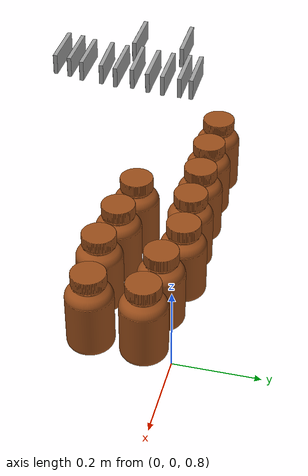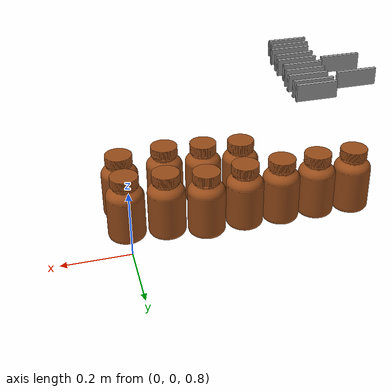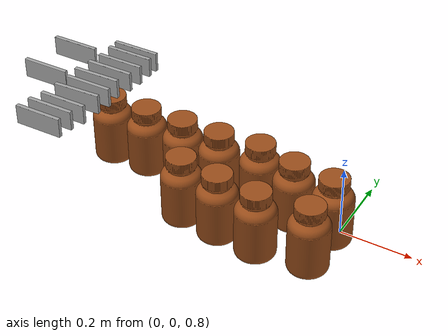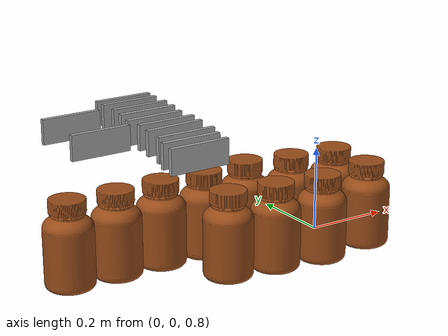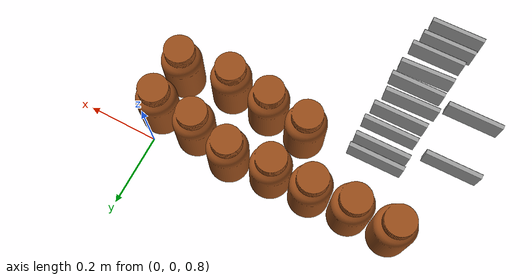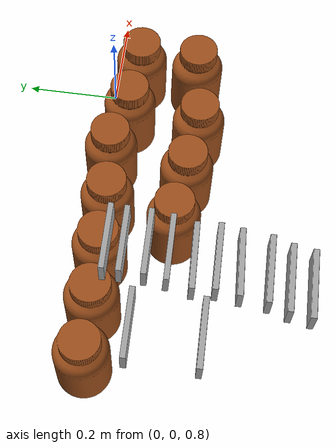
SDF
<sdf version="1.7">
 <world name="default">
  <model name="med_1_0_clone_2">
   <link name="link_0">
    <inertial>
     <mass>1</mass>
     <inertia>
      <ixx>0.166667</ixx>
      <ixy>0</ixy>
      <ixz>0</ixz>
      <iyy>0.166667</iyy>
      <iyz>0</iyz>
      <izz>0.166667</izz>
     </inertia>
    </inertial>
    <pose>0 -0.005 -0.025 0 -0 0</pose>
    <visual name="visual">
     <pose>0 0.005 0.025 0 -0 0</pose>
     <geometry><mesh><uri>model://med_1/meshes/med-1.dae</uri><scale>0.01 0.01 0.01</scale></mesh></geometry>
     <material>
      <shader type="pixel"><normal_map>__default__</normal_map></shader>
      <emissive>0 0 0 1</emissive>
     </material>
    </visual>
    <collision name="collision">
     <pose>0 0.005 0.025 0 -0 0</pose>
     <geometry><mesh><uri>model://med_1/meshes/med-1.dae</uri><scale>0.01 0.01 0.01</scale></mesh></geometry>
     <surface>
      <friction>
       <ode><mu>1</mu><mu2>1</mu2><fdir1>0 0 0</fdir1><slip1>0</slip1><slip2>0</slip2></ode>
       <torsional>
        <coefficient>1</coefficient>
        <patch_radius>0</patch_radius>
        <surface_radius>0</surface_radius>
        <use_patch_radius>1</use_patch_radius>
        <ode><slip>0</slip></ode>
       </torsional>
      </friction>
      <bounce><restitution_coefficient>0</restitution_coefficient><threshold>1e+06</threshold></bounce>
      <contact>
       <collide_without_contact>0</collide_without_contact>
       <collide_without_contact_bitmask>1</collide_without_contact_bitmask>
       <collide_bitmask>1</collide_bitmask>
       <ode>
        <soft_cfm>0</soft_cfm>
        <soft_erp>0.2</soft_erp>
        <kp>1e+13</kp>
        <kd>1</kd>
        <max_vel>0.01</max_vel>
        <min_depth>0</min_depth>
       </ode>
       <bullet>
        <split_impulse>1</split_impulse>
        <split_impulse_penetration_threshold>-0.01</split_impulse_penetration_threshold>
        <soft_cfm>0</soft_cfm>
        <soft_erp>0.2</soft_erp>
        <kp>1e+13</kp>
        <kd>1</kd>
       </bullet>
      </contact>
     </surface>
    </collision>
   </link>
   <static>0</static>
   <pose>-0.555283 -0.151315 1.20018 -2e-05 1e-06 -3.1318</pose>
  </model>
  <model name="med_1_0_clone_4">
   <link name="link_0">
    <inertial>
     <mass>1</mass>
     <inertia>
      <ixx>0.166667</ixx>
      <ixy>0</ixy>
      <ixz>0</ixz>
      <iyy>0.166667</iyy>
      <iyz>0</iyz>
      <izz>0.166667</izz>
     </inertia>
    </inertial>
    <pose>0 -0.005 -0.025 0 -0 0</pose>
    <visual name="visual">
     <pose>0 0.005 0.025 0 -0 0</pose>
     <geometry><mesh><uri>model://med_1/meshes/med-1.dae</uri><scale>0.01 0.01 0.01</scale></mesh></geometry>
     <material>
      <shader type="pixel"><normal_map>__default__</normal_map></shader>
      <emissive>0 0 0 1</emissive>
     </material>
    </visual>
    <collision name="collision">
     <pose>0 0.005 0.025 0 -0 0</pose>
     <geometry><mesh><uri>model://med_1/meshes/med-1.dae</uri><scale>0.01 0.01 0.01</scale></mesh></geometry>
     <surface>
      <friction>
       <ode><mu>1</mu><mu2>1</mu2><fdir1>0 0 0</fdir1><slip1>0</slip1><slip2>0</slip2></ode>
       <torsional>
        <coefficient>1</coefficient>
        <patch_radius>0</patch_radius>
        <surface_radius>0</surface_radius>
        <use_patch_radius>1</use_patch_radius>
        <ode><slip>0</slip></ode>
       </torsional>
      </friction>
      <bounce><restitution_coefficient>0</restitution_coefficient><threshold>1e+06</threshold></bounce>
      <contact>
       <collide_without_contact>0</collide_without_contact>
       <collide_without_contact_bitmask>1</collide_without_contact_bitmask>
       <collide_bitmask>1</collide_bitmask>
       <ode>
        <soft_cfm>0</soft_cfm>
        <soft_erp>0.2</soft_erp>
        <kp>1e+13</kp>
        <kd>1</kd>
        <max_vel>0.01</max_vel>
        <min_depth>0</min_depth>
       </ode>
       <bullet>
        <split_impulse>1</split_impulse>
        <split_impulse_penetration_threshold>-0.01</split_impulse_penetration_threshold>
        <soft_cfm>0</soft_cfm>
        <soft_erp>0.2</soft_erp>
        <kp>1e+13</kp>
        <kd>1</kd>
       </bullet>
      </contact>
     </surface>
    </collision>
   </link>
   <static>0</static>
   <pose>-0.569504 -0.230232 1.20021 -0.011212 0.000559 -3.11158</pose>
  </model>
  <model name="med_1_0_clone_6">
   <link name="link_0">
    <inertial>
     <mass>1</mass>
     <inertia>
      <ixx>0.166667</ixx>
      <ixy>0</ixy>
      <ixz>0</ixz>
      <iyy>0.166667</iyy>
      <iyz>0</iyz>
      <izz>0.166667</izz>
     </inertia>
    </inertial>
    <pose>0 -0.005 -0.025 0 -0 0</pose>
    <visual name="visual">
     <pose>0 0.005 0.025 0 -0 0</pose>
     <geometry><mesh><uri>model://med_1/meshes/med-1.dae</uri><scale>0.01 0.01 0.01</scale></mesh></geometry>
     <material>
      <shader type="pixel"><normal_map>__default__</normal_map></shader>
      <emissive>0 0 0 1</emissive>
     </material>
    </visual>
    <collision name="collision">
     <pose>0 0.005 0.025 0 -0 0</pose>
     <geometry><mesh><uri>model://med_1/meshes/med-1.dae</uri><scale>0.01 0.01 0.01</scale></mesh></geometry>
     <surface>
      <friction>
       <ode><mu>1</mu><mu2>1</mu2><fdir1>0 0 0</fdir1><slip1>0</slip1><slip2>0</slip2></ode>
       <torsional>
        <coefficient>1</coefficient>
        <patch_radius>0</patch_radius>
        <surface_radius>0</surface_radius>
        <use_patch_radius>1</use_patch_radius>
        <ode><slip>0</slip></ode>
       </torsional>
      </friction>
      <bounce><restitution_coefficient>0</restitution_coefficient><threshold>1e+06</threshold></bounce>
      <contact>
       <collide_without_contact>0</collide_without_contact>
       <collide_without_contact_bitmask>1</collide_without_contact_bitmask>
       <collide_bitmask>1</collide_bitmask>
       <ode>
        <soft_cfm>0</soft_cfm>
        <soft_erp>0.2</soft_erp>
        <kp>1e+13</kp>
        <kd>1</kd>
        <max_vel>0.01</max_vel>
        <min_depth>0</min_depth>
       </ode>
       <bullet>
        <split_impulse>1</split_impulse>
        <split_impulse_penetration_threshold>-0.01</split_impulse_penetration_threshold>
        <soft_cfm>0</soft_cfm>
        <soft_erp>0.2</soft_erp>
        <kp>1e+13</kp>
        <kd>1</kd>
       </bullet>
      </contact>
     </surface>
    </collision>
   </link>
   <static>0</static>
   <pose>-0.566184 -0.269641 1.20018 -1.8e-05 -1e-06 -3.13179</pose>
  </model>
  <model name="med_1_0_clone_7">
   <link name="link_0">
    <inertial>
     <mass>1</mass>
     <inertia>
      <ixx>0.166667</ixx>
      <ixy>0</ixy>
      <ixz>0</ixz>
      <iyy>0.166667</iyy>
      <iyz>0</iyz>
      <izz>0.166667</izz>
     </inertia>
    </inertial>
    <pose>0 -0.005 -0.025 0 -0 0</pose>
    <visual name="visual">
     <pose>0 0.005 0.025 0 -0 0</pose>
     <geometry><mesh><uri>model://med_1/meshes/med-1.dae</uri><scale>0.01 0.01 0.01</scale></mesh></geometry>
     <material>
      <shader type="pixel"><normal_map>__default__</normal_map></shader>
      <emissive>0 0 0 1</emissive>
     </material>
    </visual>
    <collision name="collision">
     <pose>0 0.005 0.025 0 -0 0</pose>
     <geometry><mesh><uri>model://med_1/meshes/med-1.dae</uri><scale>0.01 0.01 0.01</scale></mesh></geometry>
     <surface>
      <friction>
       <ode><mu>1</mu><mu2>1</mu2><fdir1>0 0 0</fdir1><slip1>0</slip1><slip2>0</slip2></ode>
       <torsional>
        <coefficient>1</coefficient>
        <patch_radius>0</patch_radius>
        <surface_radius>0</surface_radius>
        <use_patch_radius>1</use_patch_radius>
        <ode><slip>0</slip></ode>
       </torsional>
      </friction>
      <bounce><restitution_coefficient>0</restitution_coefficient><threshold>1e+06</threshold></bounce>
      <contact>
       <collide_without_contact>0</collide_without_contact>
       <collide_without_contact_bitmask>1</collide_without_contact_bitmask>
       <collide_bitmask>1</collide_bitmask>
       <ode>
        <soft_cfm>0</soft_cfm>
        <soft_erp>0.2</soft_erp>
        <kp>1e+13</kp>
        <kd>1</kd>
        <max_vel>0.01</max_vel>
        <min_depth>0</min_depth>
       </ode>
       <bullet>
        <split_impulse>1</split_impulse>
        <split_impulse_penetration_threshold>-0.01</split_impulse_penetration_threshold>
        <soft_cfm>0</soft_cfm>
        <soft_erp>0.2</soft_erp>
        <kp>1e+13</kp>
        <kd>1</kd>
       </bullet>
      </contact>
     </surface>
    </collision>
   </link>
   <static>0</static>
   <pose>-0.700002 -0.258197 1.20018 -1.6e-05 1e-06 -3.13179</pose>
  </model>
  <model name="med_1_0_clone_9">
   <link name="link_0">
    <inertial>
     <mass>1</mass>
     <inertia>
      <ixx>0.166667</ixx>
      <ixy>0</ixy>
      <ixz>0</ixz>
      <iyy>0.166667</iyy>
      <iyz>0</iyz>
      <izz>0.166667</izz>
     </inertia>
    </inertial>
    <pose>0 -0.005 -0.025 0 -0 0</pose>
    <visual name="visual">
     <pose>0 0.005 0.025 0 -0 0</pose>
     <geometry><mesh><uri>model://med_1/meshes/med-1.dae</uri><scale>0.01 0.01 0.01</scale></mesh></geometry>
     <material>
      <shader type="pixel"><normal_map>__default__</normal_map></shader>
      <emissive>0 0 0 1</emissive>
     </material>
    </visual>
    <collision name="collision">
     <pose>0 0.005 0.025 0 -0 0</pose>
     <geometry><mesh><uri>model://med_1/meshes/med-1.dae</uri><scale>0.01 0.01 0.01</scale></mesh></geometry>
     <surface>
      <friction>
       <ode><mu>1</mu><mu2>1</mu2><fdir1>0 0 0</fdir1><slip1>0</slip1><slip2>0</slip2></ode>
       <torsional>
        <coefficient>1</coefficient>
        <patch_radius>0</patch_radius>
        <surface_radius>0</surface_radius>
        <use_patch_radius>1</use_patch_radius>
        <ode><slip>0</slip></ode>
       </torsional>
      </friction>
      <bounce><restitution_coefficient>0</restitution_coefficient><threshold>1e+06</threshold></bounce>
      <contact>
       <collide_without_contact>0</collide_without_contact>
       <collide_without_contact_bitmask>1</collide_without_contact_bitmask>
       <collide_bitmask>1</collide_bitmask>
       <ode>
        <soft_cfm>0</soft_cfm>
        <soft_erp>0.2</soft_erp>
        <kp>1e+13</kp>
        <kd>1</kd>
        <max_vel>0.01</max_vel>
        <min_depth>0</min_depth>
       </ode>
       <bullet>
        <split_impulse>1</split_impulse>
        <split_impulse_penetration_threshold>-0.01</split_impulse_penetration_threshold>
        <soft_cfm>0</soft_cfm>
        <soft_erp>0.2</soft_erp>
        <kp>1e+13</kp>
        <kd>1</kd>
       </bullet>
      </contact>
     </surface>
    </collision>
   </link>
   <static>0</static>
   <pose>-0.55508 -0.110079 1.20019 -2e-05 0 -3.1318</pose>
  </model>
  <model name="med_1_0_clone_18">
   <link name="link_0">
    <inertial>
     <mass>1</mass>
     <inertia>
      <ixx>0.166667</ixx>
      <ixy>0</ixy>
      <ixz>0</ixz>
      <iyy>0.166667</iyy>
      <iyz>0</iyz>
      <izz>0.166667</izz>
     </inertia>
    </inertial>
    <pose>0 -0.005 -0.025 0 -0 0</pose>
    <visual name="visual">
     <pose>0 0.005 0.025 0 -0 0</pose>
     <geometry><mesh><uri>model://med_1/meshes/med-1.dae</uri><scale>0.01 0.01 0.01</scale></mesh></geometry>
     <material>
      <shader type="pixel"><normal_map>__default__</normal_map></shader>
      <emissive>0 0 0 1</emissive>
     </material>
    </visual>
    <collision name="collision">
     <pose>0 0.005 0.025 0 -0 0</pose>
     <geometry><mesh><uri>model://med_1/meshes/med-1.dae</uri><scale>0.01 0.01 0.01</scale></mesh></geometry>
     <surface>
      <friction>
       <ode><mu>1</mu><mu2>1</mu2><fdir1>0 0 0</fdir1><slip1>0</slip1><slip2>0</slip2></ode>
       <torsional>
        <coefficient>1</coefficient>
        <patch_radius>0</patch_radius>
        <surface_radius>0</surface_radius>
        <use_patch_radius>1</use_patch_radius>
        <ode><slip>0</slip></ode>
       </torsional>
      </friction>
      <bounce><restitution_coefficient>0</restitution_coefficient><threshold>1e+06</threshold></bounce>
      <contact>
       <collide_without_contact>0</collide_without_contact>
       <collide_without_contact_bitmask>1</collide_without_contact_bitmask>
       <collide_bitmask>1</collide_bitmask>
       <ode>
        <soft_cfm>0</soft_cfm>
        <soft_erp>0.2</soft_erp>
        <kp>1e+13</kp>
        <kd>1</kd>
        <max_vel>0.01</max_vel>
        <min_depth>0</min_depth>
       </ode>
       <bullet>
        <split_impulse>1</split_impulse>
        <split_impulse_penetration_threshold>-0.01</split_impulse_penetration_threshold>
        <soft_cfm>0</soft_cfm>
        <soft_erp>0.2</soft_erp>
        <kp>1e+13</kp>
        <kd>1</kd>
       </bullet>
      </contact>
     </surface>
    </collision>
   </link>
   <static>0</static>
   <pose>-0.698931 -0.13829 1.20019 -2e-06 -2e-06 -3.13179</pose>
  </model>
  <model name="med_1_0_clone_22">
   <link name="link_0">
    <inertial>
     <mass>1</mass>
     <inertia>
      <ixx>0.166667</ixx>
      <ixy>0</ixy>
      <ixz>0</ixz>
      <iyy>0.166667</iyy>
      <iyz>0</iyz>
      <izz>0.166667</izz>
     </inertia>
    </inertial>
    <pose>0 -0.005 -0.025 0 -0 0</pose>
    <visual name="visual">
     <pose>0 0.005 0.025 0 -0 0</pose>
     <geometry><mesh><uri>model://med_1/meshes/med-1.dae</uri><scale>0.01 0.01 0.01</scale></mesh></geometry>
     <material>
      <shader type="pixel"><normal_map>__default__</normal_map></shader>
      <emissive>0 0 0 1</emissive>
     </material>
    </visual>
    <collision name="collision">
     <pose>0 0.005 0.025 0 -0 0</pose>
     <geometry><mesh><uri>model://med_1/meshes/med-1.dae</uri><scale>0.01 0.01 0.01</scale></mesh></geometry>
     <surface>
      <friction>
       <ode><mu>1</mu><mu2>1</mu2><fdir1>0 0 0</fdir1><slip1>0</slip1><slip2>0</slip2></ode>
       <torsional>
        <coefficient>1</coefficient>
        <patch_radius>0</patch_radius>
        <surface_radius>0</surface_radius>
        <use_patch_radius>1</use_patch_radius>
        <ode><slip>0</slip></ode>
       </torsional>
      </friction>
      <bounce><restitution_coefficient>0</restitution_coefficient><threshold>1e+06</threshold></bounce>
      <contact>
       <collide_without_contact>0</collide_without_contact>
       <collide_without_contact_bitmask>1</collide_without_contact_bitmask>
       <collide_bitmask>1</collide_bitmask>
       <ode>
        <soft_cfm>0</soft_cfm>
        <soft_erp>0.2</soft_erp>
        <kp>1e+13</kp>
        <kd>1</kd>
        <max_vel>0.01</max_vel>
        <min_depth>0</min_depth>
       </ode>
       <bullet>
        <split_impulse>1</split_impulse>
        <split_impulse_penetration_threshold>-0.01</split_impulse_penetration_threshold>
        <soft_cfm>0</soft_cfm>
        <soft_erp>0.2</soft_erp>
        <kp>1e+13</kp>
        <kd>1</kd>
       </bullet>
      </contact>
     </surface>
    </collision>
   </link>
   <static>0</static>
   <pose>-0.576732 -0.356509 1.20027 0.003392 0.000779 -3.13373</pose>
  </model>
  <model name="med_1_0_clone_25">
   <link name="link_0">
    <inertial>
     <mass>1</mass>
     <inertia>
      <ixx>0.166667</ixx>
      <ixy>0</ixy>
      <ixz>0</ixz>
      <iyy>0.166667</iyy>
      <iyz>0</iyz>
      <izz>0.166667</izz>
     </inertia>
    </inertial>
    <pose>0 -0.005 -0.025 0 -0 0</pose>
    <visual name="visual">
     <pose>0 0.005 0.025 0 -0 0</pose>
     <geometry><mesh><uri>model://med_1/meshes/med-1.dae</uri><scale>0.01 0.01 0.01</scale></mesh></geometry>
     <material>
      <shader type="pixel"><normal_map>__default__</normal_map></shader>
      <emissive>0 0 0 1</emissive>
     </material>
    </visual>
    <collision name="collision">
     <pose>0 0.005 0.025 0 -0 0</pose>
     <geometry><mesh><uri>model://med_1/meshes/med-1.dae</uri><scale>0.01 0.01 0.01</scale></mesh></geometry>
     <surface>
      <friction>
       <ode><mu>1</mu><mu2>1</mu2><fdir1>0 0 0</fdir1><slip1>0</slip1><slip2>0</slip2></ode>
       <torsional>
        <coefficient>1</coefficient>
        <patch_radius>0</patch_radius>
        <surface_radius>0</surface_radius>
        <use_patch_radius>1</use_patch_radius>
        <ode><slip>0</slip></ode>
       </torsional>
      </friction>
      <bounce><restitution_coefficient>0</restitution_coefficient><threshold>1e+06</threshold></bounce>
      <contact>
       <collide_without_contact>0</collide_without_contact>
       <collide_without_contact_bitmask>1</collide_without_contact_bitmask>
       <collide_bitmask>1</collide_bitmask>
       <ode>
        <soft_cfm>0</soft_cfm>
        <soft_erp>0.2</soft_erp>
        <kp>1e+13</kp>
        <kd>1</kd>
        <max_vel>0.01</max_vel>
        <min_depth>0</min_depth>
       </ode>
       <bullet>
        <split_impulse>1</split_impulse>
        <split_impulse_penetration_threshold>-0.01</split_impulse_penetration_threshold>
        <soft_cfm>0</soft_cfm>
        <soft_erp>0.2</soft_erp>
        <kp>1e+13</kp>
        <kd>1</kd>
       </bullet>
      </contact>
     </surface>
    </collision>
   </link>
   <static>0</static>
   <pose>-0.593853 -0.427873 1.20019 -3e-06 5.1e-05 -3.13177</pose>
  </model>
  <model name="med_1_0_clone_26">
   <link name="link_0">
    <inertial>
     <mass>1</mass>
     <inertia>
      <ixx>0.166667</ixx>
      <ixy>0</ixy>
      <ixz>0</ixz>
      <iyy>0.166667</iyy>
      <iyz>0</iyz>
      <izz>0.166667</izz>
     </inertia>
    </inertial>
    <pose>0 -0.005 -0.025 0 -0 0</pose>
    <visual name="visual">
     <pose>0 0.005 0.025 0 -0 0</pose>
     <geometry><mesh><uri>model://med_1/meshes/med-1.dae</uri><scale>0.01 0.01 0.01</scale></mesh></geometry>
     <material>
      <shader type="pixel"><normal_map>__default__</normal_map></shader>
      <emissive>0 0 0 1</emissive>
     </material>
    </visual>
    <collision name="collision">
     <pose>0 0.005 0.025 0 -0 0</pose>
     <geometry><mesh><uri>model://med_1/meshes/med-1.dae</uri><scale>0.01 0.01 0.01</scale></mesh></geometry>
     <surface>
      <friction>
       <ode><mu>1</mu><mu2>1</mu2><fdir1>0 0 0</fdir1><slip1>0</slip1><slip2>0</slip2></ode>
       <torsional>
        <coefficient>1</coefficient>
        <patch_radius>0</patch_radius>
        <surface_radius>0</surface_radius>
        <use_patch_radius>1</use_patch_radius>
        <ode><slip>0</slip></ode>
       </torsional>
      </friction>
      <bounce><restitution_coefficient>0</restitution_coefficient><threshold>1e+06</threshold></bounce>
      <contact>
       <collide_without_contact>0</collide_without_contact>
       <collide_without_contact_bitmask>1</collide_without_contact_bitmask>
       <collide_bitmask>1</collide_bitmask>
       <ode>
        <soft_cfm>0</soft_cfm>
        <soft_erp>0.2</soft_erp>
        <kp>1e+13</kp>
        <kd>1</kd>
        <max_vel>0.01</max_vel>
        <min_depth>0</min_depth>
       </ode>
       <bullet>
        <split_impulse>1</split_impulse>
        <split_impulse_penetration_threshold>-0.01</split_impulse_penetration_threshold>
        <soft_cfm>0</soft_cfm>
        <soft_erp>0.2</soft_erp>
        <kp>1e+13</kp>
        <kd>1</kd>
       </bullet>
      </contact>
     </surface>
    </collision>
   </link>
   <static>0</static>
   <pose>-0.587979 -0.390916 1.20018 -9e-06 -0 -3.13179</pose>
  </model>
  <model name="med_1_0_clone_34">
   <link name="link_0">
    <inertial>
     <mass>1</mass>
     <inertia>
      <ixx>0.166667</ixx>
      <ixy>0</ixy>
      <ixz>0</ixz>
      <iyy>0.166667</iyy>
      <iyz>0</iyz>
      <izz>0.166667</izz>
     </inertia>
    </inertial>
    <pose>0 -0.005 -0.025 0 -0 0</pose>
    <visual name="visual">
     <pose>0 0.005 0.025 0 -0 0</pose>
     <geometry><mesh><uri>model://med_1/meshes/med-1.dae</uri><scale>0.01 0.01 0.01</scale></mesh></geometry>
     <material>
      <shader type="pixel"><normal_map>__default__</normal_map></shader>
      <emissive>0 0 0 1</emissive>
     </material>
    </visual>
    <collision name="collision">
     <pose>0 0.005 0.025 0 -0 0</pose>
     <geometry><mesh><uri>model://med_1/meshes/med-1.dae</uri><scale>0.01 0.01 0.01</scale></mesh></geometry>
     <surface>
      <friction>
       <ode><mu>1</mu><mu2>1</mu2><fdir1>0 0 0</fdir1><slip1>0</slip1><slip2>0</slip2></ode>
       <torsional>
        <coefficient>1</coefficient>
        <patch_radius>0</patch_radius>
        <surface_radius>0</surface_radius>
        <use_patch_radius>1</use_patch_radius>
        <ode><slip>0</slip></ode>
       </torsional>
      </friction>
      <bounce><restitution_coefficient>0</restitution_coefficient><threshold>1e+06</threshold></bounce>
      <contact>
       <collide_without_contact>0</collide_without_contact>
       <collide_without_contact_bitmask>1</collide_without_contact_bitmask>
       <collide_bitmask>1</collide_bitmask>
       <ode>
        <soft_cfm>0</soft_cfm>
        <soft_erp>0.2</soft_erp>
        <kp>1e+13</kp>
        <kd>1</kd>
        <max_vel>0.01</max_vel>
        <min_depth>0</min_depth>
       </ode>
       <bullet>
        <split_impulse>1</split_impulse>
        <split_impulse_penetration_threshold>-0.01</split_impulse_penetration_threshold>
        <soft_cfm>0</soft_cfm>
        <soft_erp>0.2</soft_erp>
        <kp>1e+13</kp>
        <kd>1</kd>
       </bullet>
      </contact>
     </surface>
    </collision>
   </link>
   <static>0</static>
   <pose>-0.571335 -0.307956 1.20047 0.002564 0.004172 -3.09717</pose>
  </model>
  <model name="med_1_0_clone_37">
   <link name="link_0">
    <inertial>
     <mass>1</mass>
     <inertia>
      <ixx>0.166667</ixx>
      <ixy>0</ixy>
      <ixz>0</ixz>
      <iyy>0.166667</iyy>
      <iyz>0</iyz>
      <izz>0.166667</izz>
     </inertia>
    </inertial>
    <pose>0 -0.005 -0.025 0 -0 0</pose>
    <visual name="visual">
     <pose>0 0.005 0.025 0 -0 0</pose>
     <geometry><mesh><uri>model://med_1/meshes/med-1.dae</uri><scale>0.01 0.01 0.01</scale></mesh></geometry>
     <material>
      <shader type="pixel"><normal_map>__default__</normal_map></shader>
      <emissive>0 0 0 1</emissive>
     </material>
    </visual>
    <collision name="collision">
     <pose>0 0.005 0.025 0 -0 0</pose>
     <geometry><mesh><uri>model://med_1/meshes/med-1.dae</uri><scale>0.01 0.01 0.01</scale></mesh></geometry>
     <surface>
      <friction>
       <ode><mu>1</mu><mu2>1</mu2><fdir1>0 0 0</fdir1><slip1>0</slip1><slip2>0</slip2></ode>
       <torsional>
        <coefficient>1</coefficient>
        <patch_radius>0</patch_radius>
        <surface_radius>0</surface_radius>
        <use_patch_radius>1</use_patch_radius>
        <ode><slip>0</slip></ode>
       </torsional>
      </friction>
      <bounce><restitution_coefficient>0</restitution_coefficient><threshold>1e+06</threshold></bounce>
      <contact>
       <collide_without_contact>0</collide_without_contact>
       <collide_without_contact_bitmask>1</collide_without_contact_bitmask>
       <collide_bitmask>1</collide_bitmask>
       <ode>
        <soft_cfm>0</soft_cfm>
        <soft_erp>0.2</soft_erp>
        <kp>1e+13</kp>
        <kd>1</kd>
        <max_vel>0.01</max_vel>
        <min_depth>0</min_depth>
       </ode>
       <bullet>
        <split_impulse>1</split_impulse>
        <split_impulse_penetration_threshold>-0.01</split_impulse_penetration_threshold>
        <soft_cfm>0</soft_cfm>
        <soft_erp>0.2</soft_erp>
        <kp>1e+13</kp>
        <kd>1</kd>
       </bullet>
      </contact>
     </surface>
    </collision>
   </link>
   <static>0</static>
   <pose>-0.560101 -0.188593 1.20014 -0.026488 -4e-05 -3.13109</pose>
  </model>
  <model name="med_1_0_clone_41">
   <link name="link_0">
    <inertial>
     <mass>1</mass>
     <inertia>
      <ixx>0.166667</ixx>
      <ixy>0</ixy>
      <ixz>0</ixz>
      <iyy>0.166667</iyy>
      <iyz>0</iyz>
      <izz>0.166667</izz>
     </inertia>
    </inertial>
    <pose>0 -0.005 -0.025 0 -0 0</pose>
    <visual name="visual">
     <pose>0 0.005 0.025 0 -0 0</pose>
     <geometry><mesh><uri>model://med_1/meshes/med-1.dae</uri><scale>0.01 0.01 0.01</scale></mesh></geometry>
     <material>
      <shader type="pixel"><normal_map>__default__</normal_map></shader>
      <emissive>0 0 0 1</emissive>
     </material>
    </visual>
    <collision name="collision">
     <pose>0 0.005 0.025 0 -0 0</pose>
     <geometry><mesh><uri>model://med_1/meshes/med-1.dae</uri><scale>0.01 0.01 0.01</scale></mesh></geometry>
     <surface>
      <friction>
       <ode><mu>1</mu><mu2>1</mu2><fdir1>0 0 0</fdir1><slip1>0</slip1><slip2>0</slip2></ode>
       <torsional>
        <coefficient>1</coefficient>
        <patch_radius>0</patch_radius>
        <surface_radius>0</surface_radius>
        <use_patch_radius>1</use_patch_radius>
        <ode><slip>0</slip></ode>
       </torsional>
      </friction>
      <bounce><restitution_coefficient>0</restitution_coefficient><threshold>1e+06</threshold></bounce>
      <contact>
       <collide_without_contact>0</collide_without_contact>
       <collide_without_contact_bitmask>1</collide_without_contact_bitmask>
       <collide_bitmask>1</collide_bitmask>
       <ode>
        <soft_cfm>0</soft_cfm>
        <soft_erp>0.2</soft_erp>
        <kp>1e+13</kp>
        <kd>1</kd>
        <max_vel>0.01</max_vel>
        <min_depth>0</min_depth>
       </ode>
       <bullet>
        <split_impulse>1</split_impulse>
        <split_impulse_penetration_threshold>-0.01</split_impulse_penetration_threshold>
        <soft_cfm>0</soft_cfm>
        <soft_erp>0.2</soft_erp>
        <kp>1e+13</kp>
        <kd>1</kd>
       </bullet>
      </contact>
     </surface>
    </collision>
   </link>
   <static>0</static>
   <pose>-0.55413 -0.081836 1.20019 3e-06 -0 -3.13178</pose>
  </model>
  <model name="Medicine_Bottle_1_clone">
   <static>0</static>
   <link name="medicine_bottle_link">
    <inertial>
     <mass>0.05</mass>
     <inertia><ixx>1e-05</ixx><ixy>0</ixy><ixz>0</ixz><iyy>1e-05</iyy><iyz>0</iyz><izz>1e-05</izz></inertia>
    </inertial>
    <visual name="visual">
     <geometry>
      <mesh><uri>model://Medicine_Bottle/meshes/Medicine_Bottle.stl</uri><scale>0.1 0.1 0.1</scale></mesh>
     </geometry>
     <material>
      <ambient>0.3 0.2 0.05 1</ambient>
      <diffuse>0.6 0.3 0.1 1</diffuse>
      <specular>0.2 0.2 0.2 1</specular>
      <emissive>0 0 0 1</emissive>
     </material>
    </visual>
    <collision name="collision">
     <geometry>
      <mesh><uri>model://Medicine_Bottle/meshes/Medicine_Bottle.stl</uri><scale>0.1 0.1 0.1</scale></mesh>
     </geometry>
    </collision>
   </link>
   <pose>-0.447516 -0.037443 0.824978 -0.00016 -0.000412 0.05919</pose>
  </model>
  <model name="Medicine_Bottle_1_clone_0_clone_0">
   <static>0</static>
   <link name="medicine_bottle_link">
    <inertial>
     <mass>0.05</mass>
     <inertia><ixx>1e-05</ixx><ixy>0</ixy><ixz>0</ixz><iyy>1e-05</iyy><iyz>0</iyz><izz>1e-05</izz></inertia>
    </inertial>
    <visual name="visual">
     <geometry>
      <mesh><uri>model://Medicine_Bottle/meshes/Medicine_Bottle.stl</uri><scale>0.1 0.1 0.1</scale></mesh>
     </geometry>
     <material>
      <ambient>0.3 0.2 0.05 1</ambient>
      <diffuse>0.6 0.3 0.1 1</diffuse>
      <specular>0.2 0.2 0.2 1</specular>
      <emissive>0 0 0 1</emissive>
     </material>
    </visual>
    <collision name="collision">
     <geometry>
      <mesh><uri>model://Medicine_Bottle/meshes/Medicine_Bottle.stl</uri><scale>0.1 0.1 0.1</scale></mesh>
     </geometry>
    </collision>
   </link>
   <pose>-0.138626 -0.200488 0.824978 -0.00016 -0.000413 -0.033099</pose>
  </model>
  <model name="Medicine_Bottle_1_clone_0_clone_0_clone">
   <static>0</static>
   <link name="medicine_bottle_link">
    <inertial>
     <mass>0.05</mass>
     <inertia><ixx>1e-05</ixx><ixy>0</ixy><ixz>0</ixz><iyy>1e-05</iyy><iyz>0</iyz><izz>1e-05</izz></inertia>
    </inertial>
    <visual name="visual">
     <geometry>
      <mesh><uri>model://Medicine_Bottle/meshes/Medicine_Bottle.stl</uri><scale>0.1 0.1 0.1</scale></mesh>
     </geometry>
     <material>
      <ambient>0.3 0.2 0.05 1</ambient>
      <diffuse>0.6 0.3 0.1 1</diffuse>
      <specular>0.2 0.2 0.2 1</specular>
      <emissive>0 0 0 1</emissive>
     </material>
    </visual>
    <collision name="collision">
     <geometry>
      <mesh><uri>model://Medicine_Bottle/meshes/Medicine_Bottle.stl</uri><scale>0.1 0.1 0.1</scale></mesh>
     </geometry>
    </collision>
   </link>
   <pose>-0.253864 -0.188426 0.824988 -0.00016 -0.000415 -0.004504</pose>
  </model>
  <model name="Medicine_Bottle_1_clone_clone">
   <static>0</static>
   <link name="medicine_bottle_link">
    <inertial>
     <mass>0.05</mass>
     <inertia><ixx>1e-05</ixx><ixy>0</ixy><ixz>0</ixz><iyy>1e-05</iyy><iyz>0</iyz><izz>1e-05</izz></inertia>
    </inertial>
    <visual name="visual">
     <geometry>
      <mesh><uri>model://Medicine_Bottle/meshes/Medicine_Bottle.stl</uri><scale>0.1 0.1 0.1</scale></mesh>
     </geometry>
     <material>
      <ambient>0.3 0.2 0.05 1</ambient>
      <diffuse>0.6 0.3 0.1 1</diffuse>
      <specular>0.2 0.2 0.2 1</specular>
      <emissive>0 0 0 1</emissive>
     </material>
    </visual>
    <collision name="collision">
     <geometry>
      <mesh><uri>model://Medicine_Bottle/meshes/Medicine_Bottle.stl</uri><scale>0.1 0.1 0.1</scale></mesh>
     </geometry>
    </collision>
   </link>
   <pose>-0.001862 -0.183147 0.824988 -0.000158 -0.000417 0.051104</pose>
  </model>
  <model name="Medicine_Bottle_1_clone_clone_0">
   <static>0</static>
   <link name="medicine_bottle_link">
    <inertial>
     <mass>0.05</mass>
     <inertia><ixx>1e-05</ixx><ixy>0</ixy><ixz>0</ixz><iyy>1e-05</iyy><iyz>0</iyz><izz>1e-05</izz></inertia>
    </inertial>
    <visual name="visual">
     <geometry>
      <mesh><uri>model://Medicine_Bottle/meshes/Medicine_Bottle.stl</uri><scale>0.1 0.1 0.1</scale></mesh>
     </geometry>
     <material>
      <ambient>0.3 0.2 0.05 1</ambient>
      <diffuse>0.6 0.3 0.1 1</diffuse>
      <specular>0.2 0.2 0.2 1</specular>
      <emissive>0 0 0 1</emissive>
     </material>
    </visual>
    <collision name="collision">
     <geometry>
      <mesh><uri>model://Medicine_Bottle/meshes/Medicine_Bottle.stl</uri><scale>0.1 0.1 0.1</scale></mesh>
     </geometry>
    </collision>
   </link>
   <pose>-0.669522 -0.038783 0.824988 -0.00016 -0.000412 0.318389</pose>
  </model>
  <model name="Medicine_Bottle_1_clone_clone_1">
   <static>0</static>
   <link name="medicine_bottle_link">
    <inertial>
     <mass>0.05</mass>
     <inertia><ixx>1e-05</ixx><ixy>0</ixy><ixz>0</ixz><iyy>1e-05</iyy><iyz>0</iyz><izz>1e-05</izz></inertia>
    </inertial>
    <visual name="visual">
     <geometry>
      <mesh><uri>model://Medicine_Bottle/meshes/Medicine_Bottle.stl</uri><scale>0.1 0.1 0.1</scale></mesh>
     </geometry>
     <material>
      <ambient>0.3 0.2 0.05 1</ambient>
      <diffuse>0.6 0.3 0.1 1</diffuse>
      <specular>0.2 0.2 0.2 1</specular>
      <emissive>0 0 0 1</emissive>
     </material>
    </visual>
    <collision name="collision">
     <geometry>
      <mesh><uri>model://Medicine_Bottle/meshes/Medicine_Bottle.stl</uri><scale>0.1 0.1 0.1</scale></mesh>
     </geometry>
    </collision>
   </link>
   <pose>0.002032 -0.061082 0.824988 -0.000161 -0.000412 0.05919</pose>
  </model>
  <model name="Medicine_Bottle_1_clone_clone_2">
   <static>0</static>
   <link name="medicine_bottle_link">
    <inertial>
     <mass>0.05</mass>
     <inertia><ixx>1e-05</ixx><ixy>0</ixy><ixz>0</ixz><iyy>1e-05</iyy><iyz>0</iyz><izz>1e-05</izz></inertia>
    </inertial>
    <visual name="visual">
     <geometry>
      <mesh><uri>model://Medicine_Bottle/meshes/Medicine_Bottle.stl</uri><scale>0.1 0.1 0.1</scale></mesh>
     </geometry>
     <material>
      <ambient>0.3 0.2 0.05 1</ambient>
      <diffuse>0.6 0.3 0.1 1</diffuse>
      <specular>0.2 0.2 0.2 1</specular>
      <emissive>0 0 0 1</emissive>
     </material>
    </visual>
    <collision name="collision">
     <geometry>
      <mesh><uri>model://Medicine_Bottle/meshes/Medicine_Bottle.stl</uri><scale>0.1 0.1 0.1</scale></mesh>
     </geometry>
    </collision>
   </link>
   <pose>-0.112353 -0.050825 0.824988 -0.00016 -0.000412 0.05919</pose>
  </model>
  <model name="Medicine_Bottle_1_clone_clone_3">
   <static>0</static>
   <link name="medicine_bottle_link">
    <inertial>
     <mass>0.05</mass>
     <inertia><ixx>1e-05</ixx><ixy>0</ixy><ixz>0</ixz><iyy>1e-05</iyy><iyz>0</iyz><izz>1e-05</izz></inertia>
    </inertial>
    <visual name="visual">
     <geometry>
      <mesh><uri>model://Medicine_Bottle/meshes/Medicine_Bottle.stl</uri><scale>0.1 0.1 0.1</scale></mesh>
     </geometry>
     <material>
      <ambient>0.3 0.2 0.05 1</ambient>
      <diffuse>0.6 0.3 0.1 1</diffuse>
      <specular>0.2 0.2 0.2 1</specular>
      <emissive>0 0 0 1</emissive>
     </material>
    </visual>
    <collision name="collision">
     <geometry>
      <mesh><uri>model://Medicine_Bottle/meshes/Medicine_Bottle.stl</uri><scale>0.1 0.1 0.1</scale></mesh>
     </geometry>
    </collision>
   </link>
   <pose>-0.222015 -0.026397 0.824978 -0.000161 -0.000413 0.049902</pose>
  </model>
  <model name="Medicine_Bottle_1_clone_clone_4">
   <static>0</static>
   <link name="medicine_bottle_link">
    <inertial>
     <mass>0.05</mass>
     <inertia><ixx>1e-05</ixx><ixy>0</ixy><ixz>0</ixz><iyy>1e-05</iyy><iyz>0</iyz><izz>1e-05</izz></inertia>
    </inertial>
    <visual name="visual">
     <geometry>
      <mesh><uri>model://Medicine_Bottle/meshes/Medicine_Bottle.stl</uri><scale>0.1 0.1 0.1</scale></mesh>
     </geometry>
     <material>
      <ambient>0.3 0.2 0.05 1</ambient>
      <diffuse>0.6 0.3 0.1 1</diffuse>
      <specular>0.2 0.2 0.2 1</specular>
      <emissive>0 0 0 1</emissive>
     </material>
    </visual>
    <collision name="collision">
     <geometry>
      <mesh><uri>model://Medicine_Bottle/meshes/Medicine_Bottle.stl</uri><scale>0.1 0.1 0.1</scale></mesh>
     </geometry>
    </collision>
   </link>
   <pose>-0.337675 -0.036717 0.824988 -0.000161 -0.000416 -0.007512</pose>
  </model>
  <model name="Medicine_Bottle_1_clone_clone_5">
   <static>0</static>
   <link name="medicine_bottle_link">
    <inertial>
     <mass>0.05</mass>
     <inertia><ixx>1e-05</ixx><ixy>0</ixy><ixz>0</ixz><iyy>1e-05</iyy><iyz>0</iyz><izz>1e-05</izz></inertia>
    </inertial>
    <visual name="visual">
     <geometry>
      <mesh><uri>model://Medicine_Bottle/meshes/Medicine_Bottle.stl</uri><scale>0.1 0.1 0.1</scale></mesh>
     </geometry>
     <material>
      <ambient>0.3 0.2 0.05 1</ambient>
      <diffuse>0.6 0.3 0.1 1</diffuse>
      <specular>0.2 0.2 0.2 1</specular>
      <emissive>0 0 0 1</emissive>
     </material>
    </visual>
    <collision name="collision">
     <geometry>
      <mesh><uri>model://Medicine_Bottle/meshes/Medicine_Bottle.stl</uri><scale>0.1 0.1 0.1</scale></mesh>
     </geometry>
    </collision>
   </link>
   <pose>-0.558047 -0.040095 0.824988 -0.000159 -0.000416 -3.02269</pose>
  </model>
  <model name="Medicine_Bottle_1_clone_0_clone_0_clone_clone">
   <static>0</static>
   <link name="medicine_bottle_link">
    <inertial>
     <mass>0.05</mass>
     <inertia><ixx>1e-05</ixx><ixy>0</ixy><ixz>0</ixz><iyy>1e-05</iyy><iyz>0</iyz><izz>1e-05</izz></inertia>
    </inertial>
    <visual name="visual">
     <geometry>
      <mesh><uri>model://Medicine_Bottle/meshes/Medicine_Bottle.stl</uri><scale>0.1 0.1 0.1</scale></mesh>
     </geometry>
     <material>
      <ambient>0.3 0.2 0.05 1</ambient>
      <diffuse>0.6 0.3 0.1 1</diffuse>
      <specular>0.2 0.2 0.2 1</specular>
      <emissive>0 0 0 1</emissive>
     </material>
    </visual>
    <collision name="collision">
     <geometry>
      <mesh><uri>model://Medicine_Bottle/meshes/Medicine_Bottle.stl</uri><scale>0.1 0.1 0.1</scale></mesh>
     </geometry>
    </collision>
   </link>
   <pose>-0.366239 -0.174922 0.824988 -0.000161 -0.000412 -0.004494</pose>
  </model>
 </world>
</sdf>
